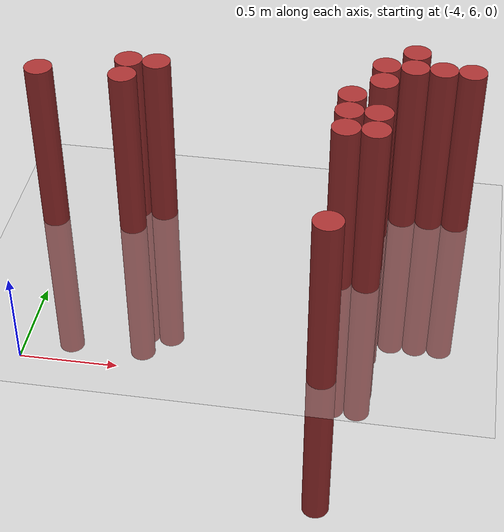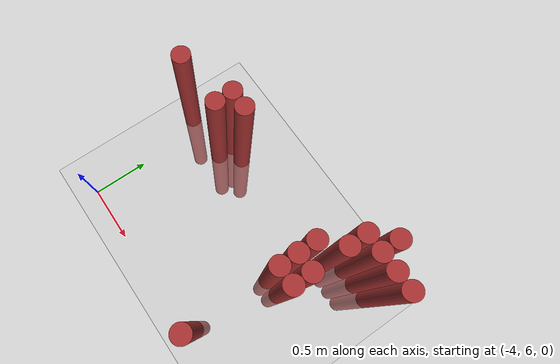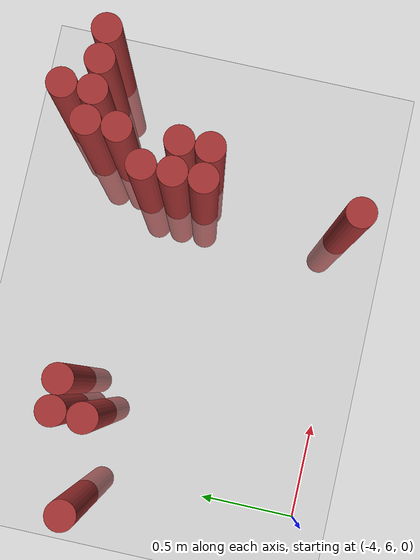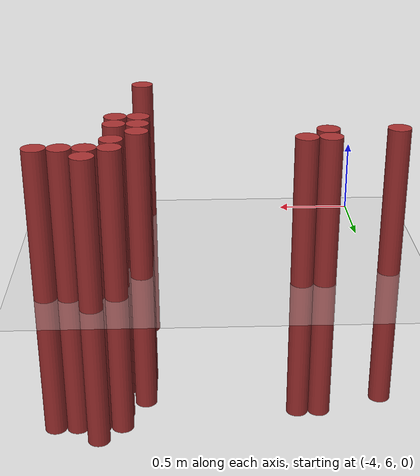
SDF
<sdf version="1.6">
 <world name="default">
  <model name="ground_plane">
   <static>1</static>
   <link name="link">
    <collision name="collision">
     <geometry><plane><normal>0 0 1</normal><size>100 100</size></plane></geometry>
     <surface><friction><ode><mu>100</mu><mu2>50</mu2></ode></friction></surface>
    </collision>
    <visual name="visual">
     <cast_shadows>0</cast_shadows>
     <geometry><plane><normal>0 0 1</normal><size>100 100</size></plane></geometry>
     <material>
      <script><uri>file://media/materials/scripts/gazebo.material</uri><name>Gazebo/Grey</name></script>
     </material>
    </visual>
   </link>
  </model>
  <model name="unit_cylinder_138">
   <static>1</static>
   <pose>-4.125000 7.125000 0.000000 0.000000 0.000000 0.000000</pose>
   <link name="link">
    <inertial>
     <mass>1</mass>
     <inertia><ixx>0.145833</ixx><ixy>0</ixy><ixz>0</ixz><iyy>0.145833</iyy><iyz>0</iyz><izz>0.125</izz></inertia>
    </inertial>
    <collision name="collision">
     <geometry><cylinder><radius>0.075000</radius><length>2</length></cylinder></geometry>
    </collision>
    <visual name="visual">
     <geometry><cylinder><radius>0.075000</radius><length>2</length></cylinder></geometry>
     <material>
      <ambient>0.648000 0.192000 0.192000 1</ambient>
      <diffuse>0.648000 0.192000 0.192000 1</diffuse>
     </material>
     <material>
      <script><name>Gazebo/Grey</name><uri>file://media/materials/scripts/gazebo.material</uri></script>
     </material>
    </visual>
   </link>
  </model>
  <model name="unit_cylinder_139">
   <static>1</static>
   <pose>-3.675000 7.125000 0.000000 0.000000 0.000000 0.000000</pose>
   <link name="link">
    <inertial>
     <mass>1</mass>
     <inertia><ixx>0.145833</ixx><ixy>0</ixy><ixz>0</ixz><iyy>0.145833</iyy><iyz>0</iyz><izz>0.125</izz></inertia>
    </inertial>
    <collision name="collision">
     <geometry><cylinder><radius>0.075000</radius><length>2</length></cylinder></geometry>
    </collision>
    <visual name="visual">
     <geometry><cylinder><radius>0.075000</radius><length>2</length></cylinder></geometry>
     <material>
      <ambient>0.648000 0.192000 0.192000 1</ambient>
      <diffuse>0.648000 0.192000 0.192000 1</diffuse>
     </material>
     <material>
      <script><name>Gazebo/Grey</name><uri>file://media/materials/scripts/gazebo.material</uri></script>
     </material>
    </visual>
   </link>
  </model>
  <model name="unit_cylinder_140">
   <static>1</static>
   <pose>-3.675000 7.275000 0.000000 0.000000 0.000000 0.000000</pose>
   <link name="link">
    <inertial>
     <mass>1</mass>
     <inertia><ixx>0.145833</ixx><ixy>0</ixy><ixz>0</ixz><iyy>0.145833</iyy><iyz>0</iyz><izz>0.125</izz></inertia>
    </inertial>
    <collision name="collision">
     <geometry><cylinder><radius>0.075000</radius><length>2</length></cylinder></geometry>
    </collision>
    <visual name="visual">
     <geometry><cylinder><radius>0.075000</radius><length>2</length></cylinder></geometry>
     <material>
      <ambient>0.648000 0.192000 0.192000 1</ambient>
      <diffuse>0.648000 0.192000 0.192000 1</diffuse>
     </material>
     <material>
      <script><name>Gazebo/Grey</name><uri>file://media/materials/scripts/gazebo.material</uri></script>
     </material>
    </visual>
   </link>
  </model>
  <model name="unit_cylinder_141">
   <static>1</static>
   <pose>-3.525000 7.275000 0.000000 0.000000 0.000000 0.000000</pose>
   <link name="link">
    <inertial>
     <mass>1</mass>
     <inertia><ixx>0.145833</ixx><ixy>0</ixy><ixz>0</ixz><iyy>0.145833</iyy><iyz>0</iyz><izz>0.125</izz></inertia>
    </inertial>
    <collision name="collision">
     <geometry><cylinder><radius>0.075000</radius><length>2</length></cylinder></geometry>
    </collision>
    <visual name="visual">
     <geometry><cylinder><radius>0.075000</radius><length>2</length></cylinder></geometry>
     <material>
      <ambient>0.648000 0.192000 0.192000 1</ambient>
      <diffuse>0.648000 0.192000 0.192000 1</diffuse>
     </material>
     <material>
      <script><name>Gazebo/Grey</name><uri>file://media/materials/scripts/gazebo.material</uri></script>
     </material>
    </visual>
   </link>
  </model>
  <model name="unit_cylinder_154">
   <static>1</static>
   <pose>-2.475000 6.075000 0.000000 0.000000 0.000000 0.000000</pose>
   <link name="link">
    <inertial>
     <mass>1</mass>
     <inertia><ixx>0.145833</ixx><ixy>0</ixy><ixz>0</ixz><iyy>0.145833</iyy><iyz>0</iyz><izz>0.125</izz></inertia>
    </inertial>
    <collision name="collision">
     <geometry><cylinder><radius>0.075000</radius><length>2</length></cylinder></geometry>
    </collision>
    <visual name="visual">
     <geometry><cylinder><radius>0.075000</radius><length>2</length></cylinder></geometry>
     <material>
      <ambient>0.648000 0.192000 0.192000 1</ambient>
      <diffuse>0.648000 0.192000 0.192000 1</diffuse>
     </material>
     <material>
      <script><name>Gazebo/Grey</name><uri>file://media/materials/scripts/gazebo.material</uri></script>
     </material>
    </visual>
   </link>
  </model>
  <model name="unit_cylinder_155">
   <static>1</static>
   <pose>-2.475000 6.825000 0.000000 0.000000 0.000000 0.000000</pose>
   <link name="link">
    <inertial>
     <mass>1</mass>
     <inertia><ixx>0.145833</ixx><ixy>0</ixy><ixz>0</ixz><iyy>0.145833</iyy><iyz>0</iyz><izz>0.125</izz></inertia>
    </inertial>
    <collision name="collision">
     <geometry><cylinder><radius>0.075000</radius><length>2</length></cylinder></geometry>
    </collision>
    <visual name="visual">
     <geometry><cylinder><radius>0.075000</radius><length>2</length></cylinder></geometry>
     <material>
      <ambient>0.648000 0.192000 0.192000 1</ambient>
      <diffuse>0.648000 0.192000 0.192000 1</diffuse>
     </material>
     <material>
      <script><name>Gazebo/Grey</name><uri>file://media/materials/scripts/gazebo.material</uri></script>
     </material>
    </visual>
   </link>
  </model>
  <model name="unit_cylinder_156">
   <static>1</static>
   <pose>-2.475000 6.975000 0.000000 0.000000 0.000000 0.000000</pose>
   <link name="link">
    <inertial>
     <mass>1</mass>
     <inertia><ixx>0.145833</ixx><ixy>0</ixy><ixz>0</ixz><iyy>0.145833</iyy><iyz>0</iyz><izz>0.125</izz></inertia>
    </inertial>
    <collision name="collision">
     <geometry><cylinder><radius>0.075000</radius><length>2</length></cylinder></geometry>
    </collision>
    <visual name="visual">
     <geometry><cylinder><radius>0.075000</radius><length>2</length></cylinder></geometry>
     <material>
      <ambient>0.648000 0.192000 0.192000 1</ambient>
      <diffuse>0.648000 0.192000 0.192000 1</diffuse>
     </material>
     <material>
      <script><name>Gazebo/Grey</name><uri>file://media/materials/scripts/gazebo.material</uri></script>
     </material>
    </visual>
   </link>
  </model>
  <model name="unit_cylinder_157">
   <static>1</static>
   <pose>-2.475000 7.125000 0.000000 0.000000 0.000000 0.000000</pose>
   <link name="link">
    <inertial>
     <mass>1</mass>
     <inertia><ixx>0.145833</ixx><ixy>0</ixy><ixz>0</ixz><iyy>0.145833</iyy><iyz>0</iyz><izz>0.125</izz></inertia>
    </inertial>
    <collision name="collision">
     <geometry><cylinder><radius>0.075000</radius><length>2</length></cylinder></geometry>
    </collision>
    <visual name="visual">
     <geometry><cylinder><radius>0.075000</radius><length>2</length></cylinder></geometry>
     <material>
      <ambient>0.648000 0.192000 0.192000 1</ambient>
      <diffuse>0.648000 0.192000 0.192000 1</diffuse>
     </material>
     <material>
      <script><name>Gazebo/Grey</name><uri>file://media/materials/scripts/gazebo.material</uri></script>
     </material>
    </visual>
   </link>
  </model>
  <model name="unit_cylinder_162">
   <static>1</static>
   <pose>-2.325000 6.825000 0.000000 0.000000 0.000000 0.000000</pose>
   <link name="link">
    <inertial>
     <mass>1</mass>
     <inertia><ixx>0.145833</ixx><ixy>0</ixy><ixz>0</ixz><iyy>0.145833</iyy><iyz>0</iyz><izz>0.125</izz></inertia>
    </inertial>
    <collision name="collision">
     <geometry><cylinder><radius>0.075000</radius><length>2</length></cylinder></geometry>
    </collision>
    <visual name="visual">
     <geometry><cylinder><radius>0.075000</radius><length>2</length></cylinder></geometry>
     <material>
      <ambient>0.648000 0.192000 0.192000 1</ambient>
      <diffuse>0.648000 0.192000 0.192000 1</diffuse>
     </material>
     <material>
      <script><name>Gazebo/Grey</name><uri>file://media/materials/scripts/gazebo.material</uri></script>
     </material>
    </visual>
   </link>
  </model>
  <model name="unit_cylinder_163">
   <static>1</static>
   <pose>-2.325000 6.975000 0.000000 0.000000 0.000000 0.000000</pose>
   <link name="link">
    <inertial>
     <mass>1</mass>
     <inertia><ixx>0.145833</ixx><ixy>0</ixy><ixz>0</ixz><iyy>0.145833</iyy><iyz>0</iyz><izz>0.125</izz></inertia>
    </inertial>
    <collision name="collision">
     <geometry><cylinder><radius>0.075000</radius><length>2</length></cylinder></geometry>
    </collision>
    <visual name="visual">
     <geometry><cylinder><radius>0.075000</radius><length>2</length></cylinder></geometry>
     <material>
      <ambient>0.648000 0.192000 0.192000 1</ambient>
      <diffuse>0.648000 0.192000 0.192000 1</diffuse>
     </material>
     <material>
      <script><name>Gazebo/Grey</name><uri>file://media/materials/scripts/gazebo.material</uri></script>
     </material>
    </visual>
   </link>
  </model>
  <model name="unit_cylinder_164">
   <static>1</static>
   <pose>-2.325000 7.275000 0.000000 0.000000 0.000000 0.000000</pose>
   <link name="link">
    <inertial>
     <mass>1</mass>
     <inertia><ixx>0.145833</ixx><ixy>0</ixy><ixz>0</ixz><iyy>0.145833</iyy><iyz>0</iyz><izz>0.125</izz></inertia>
    </inertial>
    <collision name="collision">
     <geometry><cylinder><radius>0.075000</radius><length>2</length></cylinder></geometry>
    </collision>
    <visual name="visual">
     <geometry><cylinder><radius>0.075000</radius><length>2</length></cylinder></geometry>
     <material>
      <ambient>0.648000 0.192000 0.192000 1</ambient>
      <diffuse>0.648000 0.192000 0.192000 1</diffuse>
     </material>
     <material>
      <script><name>Gazebo/Grey</name><uri>file://media/materials/scripts/gazebo.material</uri></script>
     </material>
    </visual>
   </link>
  </model>
  <model name="unit_cylinder_165">
   <static>1</static>
   <pose>-2.325000 7.425000 0.000000 0.000000 0.000000 0.000000</pose>
   <link name="link">
    <inertial>
     <mass>1</mass>
     <inertia><ixx>0.145833</ixx><ixy>0</ixy><ixz>0</ixz><iyy>0.145833</iyy><iyz>0</iyz><izz>0.125</izz></inertia>
    </inertial>
    <collision name="collision">
     <geometry><cylinder><radius>0.075000</radius><length>2</length></cylinder></geometry>
    </collision>
    <visual name="visual">
     <geometry><cylinder><radius>0.075000</radius><length>2</length></cylinder></geometry>
     <material>
      <ambient>0.648000 0.192000 0.192000 1</ambient>
      <diffuse>0.648000 0.192000 0.192000 1</diffuse>
     </material>
     <material>
      <script><name>Gazebo/Grey</name><uri>file://media/materials/scripts/gazebo.material</uri></script>
     </material>
    </visual>
   </link>
  </model>
  <model name="unit_cylinder_167">
   <static>1</static>
   <pose>-2.175000 7.425000 0.000000 0.000000 0.000000 0.000000</pose>
   <link name="link">
    <inertial>
     <mass>1</mass>
     <inertia><ixx>0.145833</ixx><ixy>0</ixy><ixz>0</ixz><iyy>0.145833</iyy><iyz>0</iyz><izz>0.125</izz></inertia>
    </inertial>
    <collision name="collision">
     <geometry><cylinder><radius>0.075000</radius><length>2</length></cylinder></geometry>
    </collision>
    <visual name="visual">
     <geometry><cylinder><radius>0.075000</radius><length>2</length></cylinder></geometry>
     <material>
      <ambient>0.648000 0.192000 0.192000 1</ambient>
      <diffuse>0.648000 0.192000 0.192000 1</diffuse>
     </material>
     <material>
      <script><name>Gazebo/Grey</name><uri>file://media/materials/scripts/gazebo.material</uri></script>
     </material>
    </visual>
   </link>
  </model>
  <model name="unit_cylinder_168">
   <static>1</static>
   <pose>-2.175000 7.575000 0.000000 0.000000 0.000000 0.000000</pose>
   <link name="link">
    <inertial>
     <mass>1</mass>
     <inertia><ixx>0.145833</ixx><ixy>0</ixy><ixz>0</ixz><iyy>0.145833</iyy><iyz>0</iyz><izz>0.125</izz></inertia>
    </inertial>
    <collision name="collision">
     <geometry><cylinder><radius>0.075000</radius><length>2</length></cylinder></geometry>
    </collision>
    <visual name="visual">
     <geometry><cylinder><radius>0.075000</radius><length>2</length></cylinder></geometry>
     <material>
      <ambient>0.648000 0.192000 0.192000 1</ambient>
      <diffuse>0.648000 0.192000 0.192000 1</diffuse>
     </material>
     <material>
      <script><name>Gazebo/Grey</name><uri>file://media/materials/scripts/gazebo.material</uri></script>
     </material>
    </visual>
   </link>
  </model>
  <model name="unit_cylinder_171">
   <static>1</static>
   <pose>-2.025000 7.425000 0.000000 0.000000 0.000000 0.000000</pose>
   <link name="link">
    <inertial>
     <mass>1</mass>
     <inertia><ixx>0.145833</ixx><ixy>0</ixy><ixz>0</ixz><iyy>0.145833</iyy><iyz>0</iyz><izz>0.125</izz></inertia>
    </inertial>
    <collision name="collision">
     <geometry><cylinder><radius>0.075000</radius><length>2</length></cylinder></geometry>
    </collision>
    <visual name="visual">
     <geometry><cylinder><radius>0.075000</radius><length>2</length></cylinder></geometry>
     <material>
      <ambient>0.648000 0.192000 0.192000 1</ambient>
      <diffuse>0.648000 0.192000 0.192000 1</diffuse>
     </material>
     <material>
      <script><name>Gazebo/Grey</name><uri>file://media/materials/scripts/gazebo.material</uri></script>
     </material>
    </visual>
   </link>
  </model>
  <model name="unit_cylinder_177">
   <static>1</static>
   <pose>-1.875000 7.425000 0.000000 0.000000 0.000000 0.000000</pose>
   <link name="link">
    <inertial>
     <mass>1</mass>
     <inertia><ixx>0.145833</ixx><ixy>0</ixy><ixz>0</ixz><iyy>0.145833</iyy><iyz>0</iyz><izz>0.125</izz></inertia>
    </inertial>
    <collision name="collision">
     <geometry><cylinder><radius>0.075000</radius><length>2</length></cylinder></geometry>
    </collision>
    <visual name="visual">
     <geometry><cylinder><radius>0.075000</radius><length>2</length></cylinder></geometry>
     <material>
      <ambient>0.648000 0.192000 0.192000 1</ambient>
      <diffuse>0.648000 0.192000 0.192000 1</diffuse>
     </material>
     <material>
      <script><name>Gazebo/Grey</name><uri>file://media/materials/scripts/gazebo.material</uri></script>
     </material>
    </visual>
   </link>
  </model>
 </world>
</sdf>
